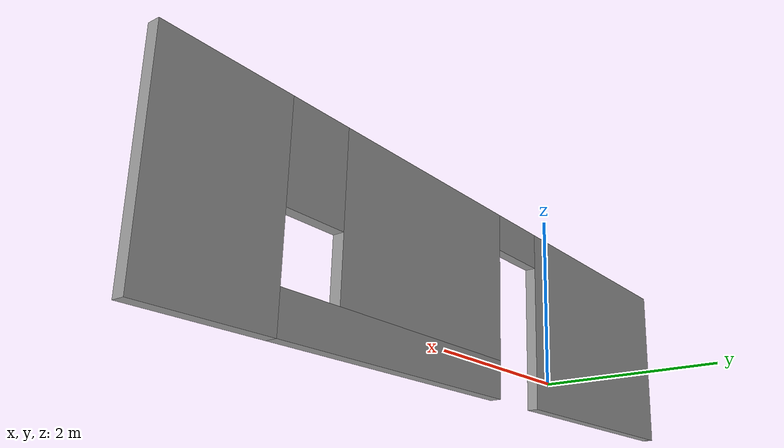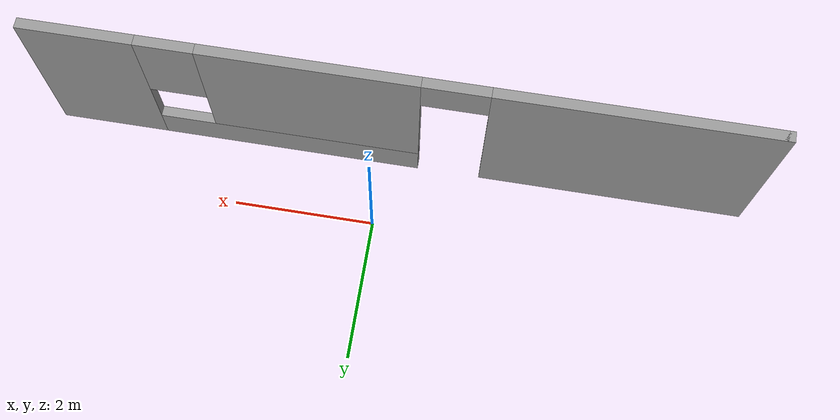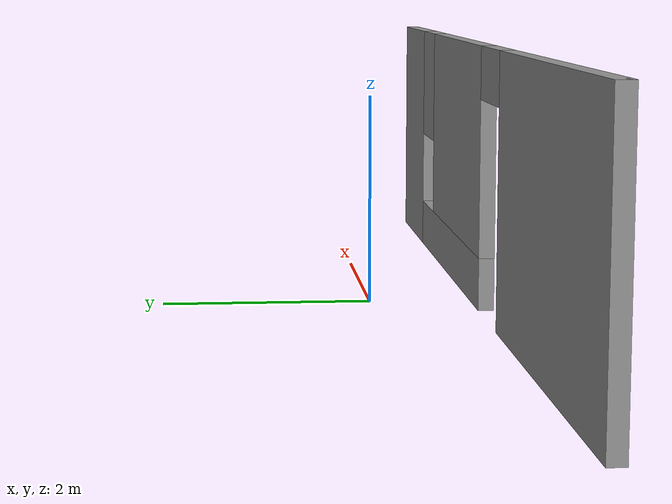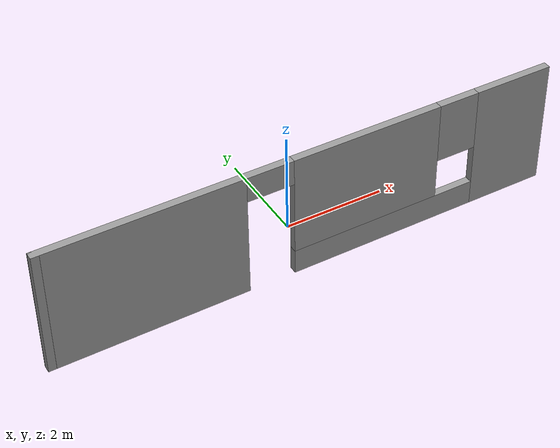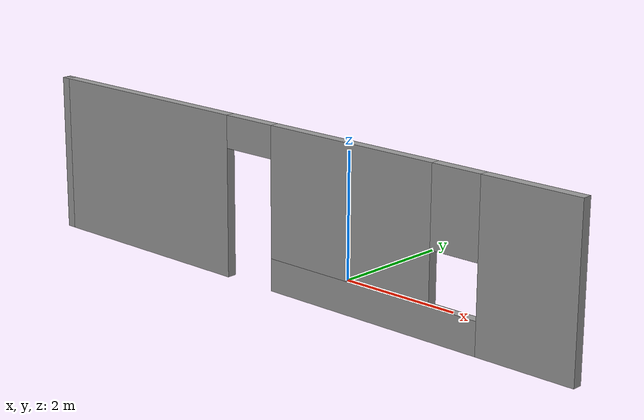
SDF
<?xml version='1.0'?>
<sdf version='1.6'>
  <model name='wall_door'>
    <pose frame=''>-0.185 -1.05 0 0 -0 0</pose>
    <link name='Wall_2'>
      <pose frame=''>0 0 0 0 -0 3.14159</pose>
      <visual name='Wall_2_Visual_0'>
        <pose frame=''>-4.2175 0 1.25 0 -0 0</pose>
        <geometry>
          <box>
            <size>1.565 0.15 2.5</size>
          </box>
        </geometry>
        <material>
          <script>
            <uri>file://media/materials/scripts/gazebo.material</uri>
            <name>Gazebo/Grey</name>
          </script>
          <ambient>1 1 1 1</ambient>
        </material>
      </visual>
      <collision name='Wall_2_Collision_0'>
        <geometry>
          <box>
            <size>1.565 0.15 2.5</size>
          </box>
        </geometry>
        <pose frame=''>-4.2175 0 1.25 0 -0 0</pose>
      </collision>
      <visual name='Wall_2_Visual_1'>
        <pose frame=''>3.1075 0 1.25 0 -0 0</pose>
        <geometry>
          <box>
            <size>3.785 0.15 2.5</size>
          </box>
        </geometry>
        <material>
          <script>
            <uri>file://media/materials/scripts/gazebo.material</uri>
            <name>Gazebo/Grey</name>
          </script>
          <ambient>1 1 1 1</ambient>
        </material>
      </visual>
      <collision name='Wall_2_Collision_1'>
        <geometry>
          <box>
            <size>3.785 0.15 2.5</size>
          </box>
        </geometry>
        <pose frame=''>3.1075 0 1.25 0 -0 0</pose>
      </collision>
      <visual name='Wall_2_Visual_2'>
        <pose frame=''>-1.56 0 0.25 0 -0 0</pose>
        <geometry>
          <box>
            <size>3.75 0.15 0.5</size>
          </box>
        </geometry>
        <material>
          <script>
            <uri>file://media/materials/scripts/gazebo.material</uri>
            <name>Gazebo/Grey</name>
          </script>
          <ambient>1 1 1 1</ambient>
        </material>
      </visual>
      <collision name='Wall_2_Collision_2'>
        <geometry>
          <box>
            <size>3.75 0.15 0.5</size>
          </box>
        </geometry>
        <pose frame=''>-1.56 0 0.25 0 -0 0</pose>
      </collision>
      <visual name='Wall_2_Visual_3'>
        <pose frame=''>-1.16 0 1.5 0 -0 0</pose>
        <geometry>
          <box>
            <size>2.95 0.15 2</size>
          </box>
        </geometry>
        <material>
          <script>
            <uri>file://media/materials/scripts/gazebo.material</uri>
            <name>Gazebo/Grey</name>
          </script>
          <ambient>1 1 1 1</ambient>
        </material>
      </visual>
      <collision name='Wall_2_Collision_3'>
        <geometry>
          <box>
            <size>2.95 0.15 2</size>
          </box>
        </geometry>
        <pose frame=''>-1.16 0 1.5 0 -0 0</pose>
      </collision>
      <visual name='Wall_2_Visual_4'>
        <pose frame=''>-3.035 0 1.9 0 -0 0</pose>
        <geometry>
          <box>
            <size>0.8 0.15 1.2</size>
          </box>
        </geometry>
        <material>
          <script>
            <uri>file://media/materials/scripts/gazebo.material</uri>
            <name>Gazebo/Grey</name>
          </script>
          <ambient>1 1 1 1</ambient>
        </material>
      </visual>
      <collision name='Wall_2_Collision_4'>
        <geometry>
          <box>
            <size>0.8 0.15 1.2</size>
          </box>
        </geometry>
        <pose frame=''>-3.035 0 1.9 0 -0 0</pose>
      </collision>
      <visual name='Wall_2_Visual_5'>
        <pose frame=''>0.765 0 2.25 0 -0 0</pose>
        <geometry>
          <box>
            <size>0.9 0.15 0.5</size>
          </box>
        </geometry>
        <material>
          <script>
            <uri>file://media/materials/scripts/gazebo.material</uri>
            <name>Gazebo/Grey</name>
          </script>
          <ambient>1 1 1 1</ambient>
        </material>
      </visual>
      <collision name='Wall_2_Collision_5'>
        <geometry>
          <box>
            <size>0.9 0.15 0.5</size>
          </box>
        </geometry>
        <pose frame=''>0.765 0 2.25 0 -0 0</pose>
      </collision>
    </link>
    <link name='Wall_3'>
      <collision name='Wall_3_Collision'>
        <geometry>
          <box>
            <size>0.15 0.15 2.5</size>
          </box>
        </geometry>
        <pose frame=''>0 0 1.25 0 -0 0</pose>
      </collision>
      <visual name='Wall_3_Visual'>
        <pose frame=''>0 0 1.25 0 -0 0</pose>
        <geometry>
          <box>
            <size>0.15 0.15 2.5</size>
          </box>
        </geometry>
        <material>
          <script>
            <uri>file://media/materials/scripts/gazebo.material</uri>
            <name>Gazebo/Grey</name>
          </script>
          <ambient>1 1 1 1</ambient>
        </material>
      </visual>
      <pose frame=''>-4.925 0 0 0 -0 0</pose>
    </link>
    <static>1</static>
  </model>
</sdf>
